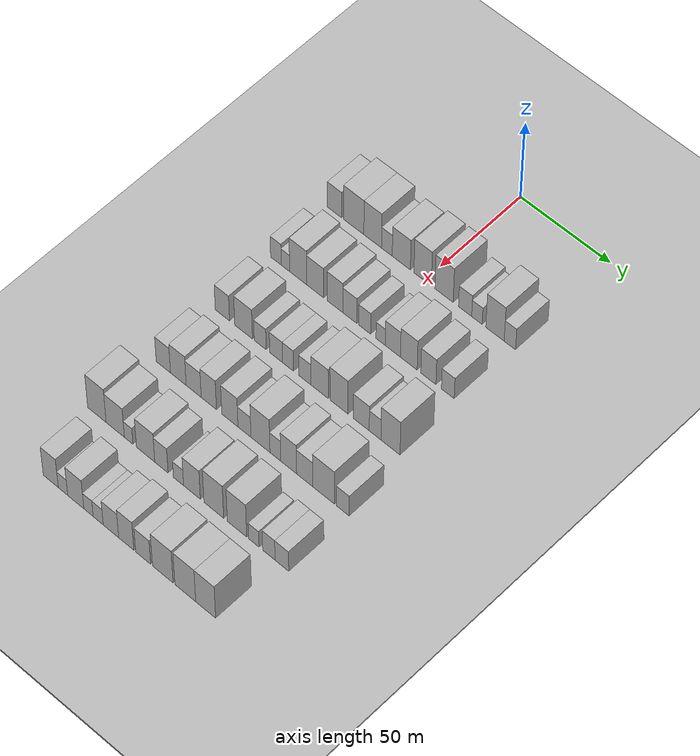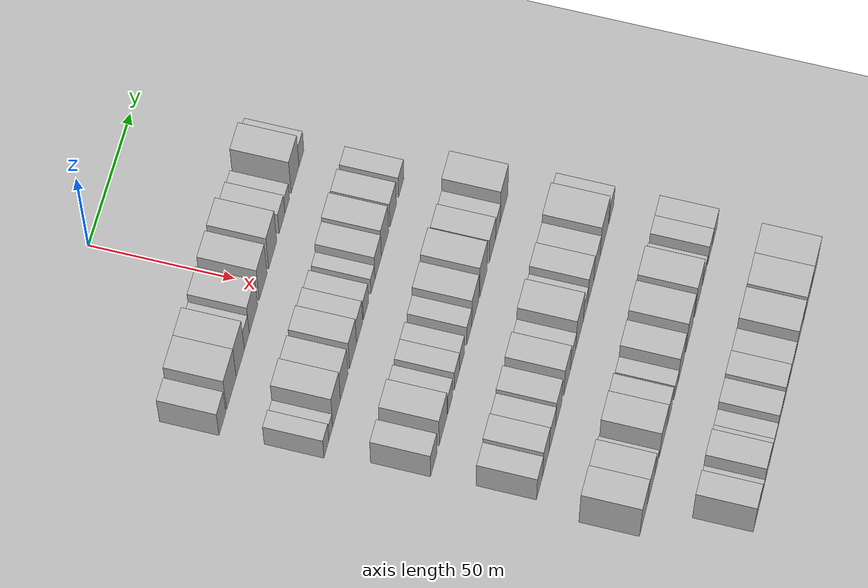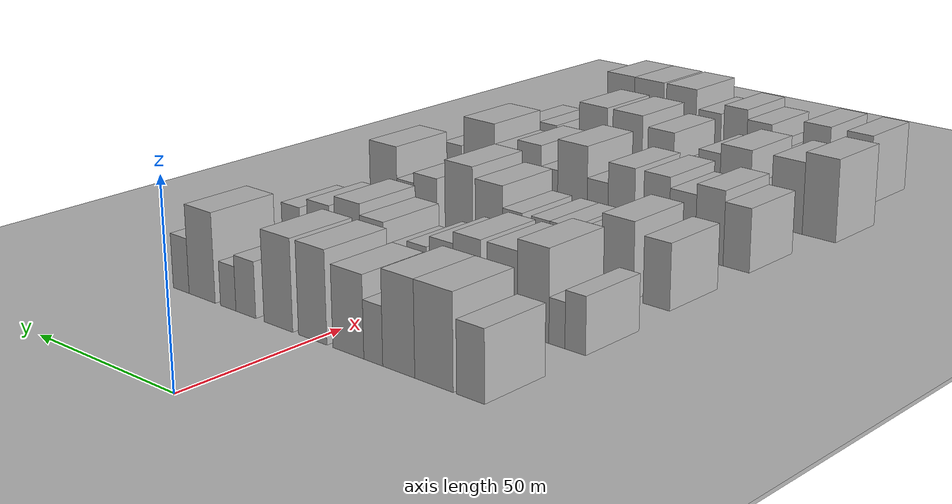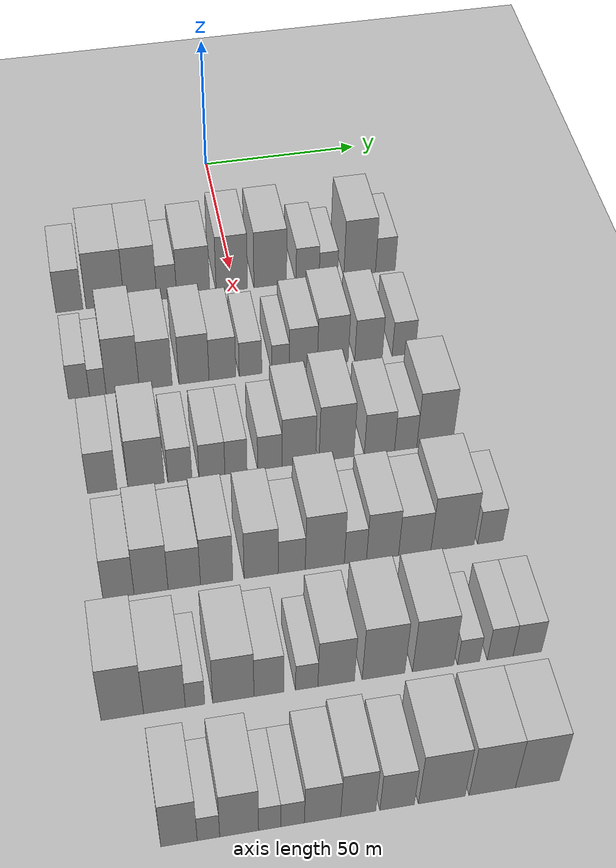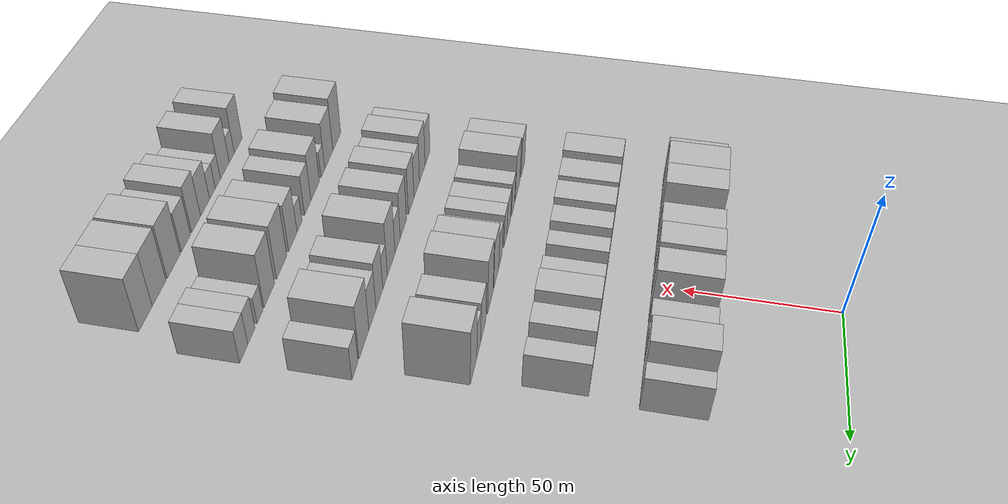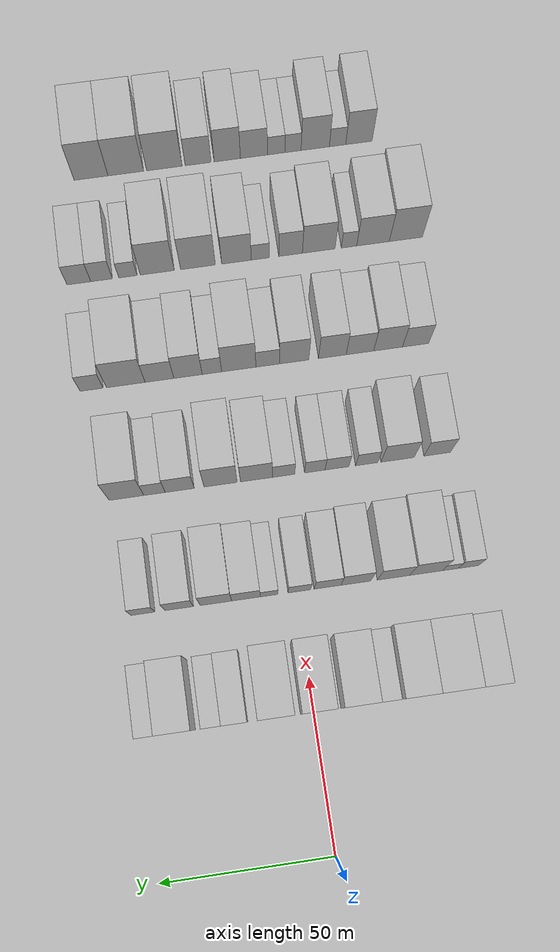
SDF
<sdf version="1.6">
 <world name="default">
  <include><name>ground_plane_1</name><uri>model://HANNAS_ground_plane</uri></include>
  <include>
   <name>ground_plane_2</name>
   <uri>model://HANNAS_ground_plane</uri>
   <pose>100 0 0  0 0 0</pose>
  </include>
  <model name="building_55">
   <static>1</static>
   <pose>50.0000 -51.0369 0 0.000000 0.000000 0.000000</pose>
   <link name="link">
    <pose>0 0 9.00 0 0 0</pose>
    <collision name="collision"><geometry><box><size>20.0000 8.2338 18.0000</size></box></geometry></collision>
    <visual name="visual">
     <cast_shadows>0</cast_shadows>
     <geometry><box><size>20.0000 8.2338 18.0000</size></box></geometry>
     <material>
      <script>
       <uri>model://HANNAS_wall/materials/scripts</uri>
       <uri>model://HANNAS_wall/materials/textures</uri>
       <name>vrc/HANNAS_wall</name>
      </script>
     </material>
    </visual>
   </link>
  </model>
  <model name="building_56">
   <static>1</static>
   <pose>50.0000 -40.0730 0 0.000000 0.000000 0.000000</pose>
   <link name="link">
    <pose>0 0 12.00 0 0 0</pose>
    <collision name="collision"><geometry><box><size>20.0000 11.6939 24.0000</size></box></geometry></collision>
    <visual name="visual">
     <cast_shadows>0</cast_shadows>
     <geometry><box><size>20.0000 11.6939 24.0000</size></box></geometry>
     <material>
      <script>
       <uri>model://HANNAS_wall/materials/scripts</uri>
       <uri>model://HANNAS_wall/materials/textures</uri>
       <name>vrc/HANNAS_wall</name>
      </script>
     </material>
    </visual>
   </link>
  </model>
  <model name="building_57">
   <static>1</static>
   <pose>50.0000 -29.1787 0 0.000000 0.000000 0.000000</pose>
   <link name="link">
    <pose>0 0 12.00 0 0 0</pose>
    <collision name="collision"><geometry><box><size>20.0000 10.0948 24.0000</size></box></geometry></collision>
    <visual name="visual">
     <cast_shadows>0</cast_shadows>
     <geometry><box><size>20.0000 10.0948 24.0000</size></box></geometry>
     <material>
      <script>
       <uri>model://HANNAS_wall/materials/scripts</uri>
       <uri>model://HANNAS_wall/materials/textures</uri>
       <name>vrc/HANNAS_wall</name>
      </script>
     </material>
    </visual>
   </link>
  </model>
  <model name="building_58">
   <static>1</static>
   <pose>50.0000 -21.0761 0 0.000000 0.000000 0.000000</pose>
   <link name="link">
    <pose>0 0 7.50 0 0 0</pose>
    <collision name="collision"><geometry><box><size>20.0000 6.1104 15.0000</size></box></geometry></collision>
    <visual name="visual">
     <cast_shadows>0</cast_shadows>
     <geometry><box><size>20.0000 6.1104 15.0000</size></box></geometry>
     <material>
      <script>
       <uri>model://HANNAS_wall/materials/scripts</uri>
       <uri>model://HANNAS_wall/materials/textures</uri>
       <name>vrc/HANNAS_wall</name>
      </script>
     </material>
    </visual>
   </link>
  </model>
  <model name="building_59">
   <static>1</static>
   <pose>50.0000 -12.8789 0 0.000000 0.000000 0.000000</pose>
   <link name="link">
    <pose>0 0 10.50 0 0 0</pose>
    <collision name="collision"><geometry><box><size>20.0000 10.2841 21.0000</size></box></geometry></collision>
    <visual name="visual">
     <cast_shadows>0</cast_shadows>
     <geometry><box><size>20.0000 10.2841 21.0000</size></box></geometry>
     <material>
      <script>
       <uri>model://HANNAS_wall/materials/scripts</uri>
       <uri>model://HANNAS_wall/materials/textures</uri>
       <name>vrc/HANNAS_wall</name>
      </script>
     </material>
    </visual>
   </link>
  </model>
  <model name="building_60">
   <static>1</static>
   <pose>50.0000 -0.8446 0 0.000000 0.000000 0.000000</pose>
   <link name="link">
    <pose>0 0 12.00 0 0 0</pose>
    <collision name="collision"><geometry><box><size>20.0000 9.7845 24.0000</size></box></geometry></collision>
    <visual name="visual">
     <cast_shadows>0</cast_shadows>
     <geometry><box><size>20.0000 9.7845 24.0000</size></box></geometry>
     <material>
      <script>
       <uri>model://HANNAS_wall/materials/scripts</uri>
       <uri>model://HANNAS_wall/materials/textures</uri>
       <name>vrc/HANNAS_wall</name>
      </script>
     </material>
    </visual>
   </link>
  </model>
  <model name="building_61">
   <static>1</static>
   <pose>50.0000 11.1648 0 0.000000 0.000000 0.000000</pose>
   <link name="link">
    <pose>0 0 12.00 0 0 0</pose>
    <collision name="collision"><geometry><box><size>20.0000 10.2342 24.0000</size></box></geometry></collision>
    <visual name="visual">
     <cast_shadows>0</cast_shadows>
     <geometry><box><size>20.0000 10.2342 24.0000</size></box></geometry>
     <material>
      <script>
       <uri>model://HANNAS_wall/materials/scripts</uri>
       <uri>model://HANNAS_wall/materials/textures</uri>
       <name>vrc/HANNAS_wall</name>
      </script>
     </material>
    </visual>
   </link>
  </model>
  <model name="building_62">
   <static>1</static>
   <pose>50.0000 22.9449 0 0.000000 0.000000 0.000000</pose>
   <link name="link">
    <pose>0 0 7.50 0 0 0</pose>
    <collision name="collision"><geometry><box><size>20.0000 7.3262 15.0000</size></box></geometry></collision>
    <visual name="visual">
     <cast_shadows>0</cast_shadows>
     <geometry><box><size>20.0000 7.3262 15.0000</size></box></geometry>
     <material>
      <script>
       <uri>model://HANNAS_wall/materials/scripts</uri>
       <uri>model://HANNAS_wall/materials/textures</uri>
       <name>vrc/HANNAS_wall</name>
      </script>
     </material>
    </visual>
   </link>
  </model>
  <model name="building_63">
   <static>1</static>
   <pose>50.0000 29.5186 0 0.000000 0.000000 0.000000</pose>
   <link name="link">
    <pose>0 0 6.00 0 0 0</pose>
    <collision name="collision"><geometry><box><size>20.0000 5.8213 12.0000</size></box></geometry></collision>
    <visual name="visual">
     <cast_shadows>0</cast_shadows>
     <geometry><box><size>20.0000 5.8213 12.0000</size></box></geometry>
     <material>
      <script>
       <uri>model://HANNAS_wall/materials/scripts</uri>
       <uri>model://HANNAS_wall/materials/textures</uri>
       <name>vrc/HANNAS_wall</name>
      </script>
     </material>
    </visual>
   </link>
  </model>
  <model name="building_64">
   <static>1</static>
   <pose>50.0000 39.4826 0 0.000000 0.000000 0.000000</pose>
   <link name="link">
    <pose>0 0 12.00 0 0 0</pose>
    <collision name="collision"><geometry><box><size>20.0000 10.1067 24.0000</size></box></geometry></collision>
    <visual name="visual">
     <cast_shadows>0</cast_shadows>
     <geometry><box><size>20.0000 10.1067 24.0000</size></box></geometry>
     <material>
      <script>
       <uri>model://HANNAS_wall/materials/scripts</uri>
       <uri>model://HANNAS_wall/materials/textures</uri>
       <name>vrc/HANNAS_wall</name>
      </script>
     </material>
    </visual>
   </link>
  </model>
  <model name="building_65">
   <static>1</static>
   <pose>50.0000 47.6715 0 0.000000 0.000000 0.000000</pose>
   <link name="link">
    <pose>0 0 7.50 0 0 0</pose>
    <collision name="collision"><geometry><box><size>20.0000 6.2711 15.0000</size></box></geometry></collision>
    <visual name="visual">
     <cast_shadows>0</cast_shadows>
     <geometry><box><size>20.0000 6.2711 15.0000</size></box></geometry>
     <material>
      <script>
       <uri>model://HANNAS_wall/materials/scripts</uri>
       <uri>model://HANNAS_wall/materials/textures</uri>
       <name>vrc/HANNAS_wall</name>
      </script>
     </material>
    </visual>
   </link>
  </model>
  <model name="building_180">
   <static>1</static>
   <pose>85.0000 -51.4143 0 0.000000 0.000000 0.000000</pose>
   <link name="link">
    <pose>0 0 7.50 0 0 0</pose>
    <collision name="collision"><geometry><box><size>20.0000 6.1304 15.0000</size></box></geometry></collision>
    <visual name="visual">
     <cast_shadows>0</cast_shadows>
     <geometry><box><size>20.0000 6.1304 15.0000</size></box></geometry>
     <material>
      <script>
       <uri>model://HANNAS_wall/materials/scripts</uri>
       <uri>model://HANNAS_wall/materials/textures</uri>
       <name>vrc/HANNAS_wall</name>
      </script>
     </material>
    </visual>
   </link>
  </model>
  <model name="building_181">
   <static>1</static>
   <pose>85.0000 -45.9198 0 0.000000 0.000000 0.000000</pose>
   <link name="link">
    <pose>0 0 6.00 0 0 0</pose>
    <collision name="collision"><geometry><box><size>20.0000 4.8586 12.0000</size></box></geometry></collision>
    <visual name="visual">
     <cast_shadows>0</cast_shadows>
     <geometry><box><size>20.0000 4.8586 12.0000</size></box></geometry>
     <material>
      <script>
       <uri>model://HANNAS_wall/materials/scripts</uri>
       <uri>model://HANNAS_wall/materials/textures</uri>
       <name>vrc/HANNAS_wall</name>
      </script>
     </material>
    </visual>
   </link>
  </model>
  <model name="building_182">
   <static>1</static>
   <pose>85.0000 -38.6034 0 0.000000 0.000000 0.000000</pose>
   <link name="link">
    <pose>0 0 12.00 0 0 0</pose>
    <collision name="collision"><geometry><box><size>20.0000 9.7742 24.0000</size></box></geometry></collision>
    <visual name="visual">
     <cast_shadows>0</cast_shadows>
     <geometry><box><size>20.0000 9.7742 24.0000</size></box></geometry>
     <material>
      <script>
       <uri>model://HANNAS_wall/materials/scripts</uri>
       <uri>model://HANNAS_wall/materials/textures</uri>
       <name>vrc/HANNAS_wall</name>
      </script>
     </material>
    </visual>
   </link>
  </model>
  <model name="building_183">
   <static>1</static>
   <pose>85.0000 -28.9002 0 0.000000 0.000000 0.000000</pose>
   <link name="link">
    <pose>0 0 10.50 0 0 0</pose>
    <collision name="collision"><geometry><box><size>20.0000 9.6323 21.0000</size></box></geometry></collision>
    <visual name="visual">
     <cast_shadows>0</cast_shadows>
     <geometry><box><size>20.0000 9.6323 21.0000</size></box></geometry>
     <material>
      <script>
       <uri>model://HANNAS_wall/materials/scripts</uri>
       <uri>model://HANNAS_wall/materials/textures</uri>
       <name>vrc/HANNAS_wall</name>
      </script>
     </material>
    </visual>
   </link>
  </model>
  <model name="building_184">
   <static>1</static>
   <pose>85.0000 -17.6263 0 0.000000 0.000000 0.000000</pose>
   <link name="link">
    <pose>0 0 10.50 0 0 0</pose>
    <collision name="collision"><geometry><box><size>20.0000 8.9155 21.0000</size></box></geometry></collision>
    <visual name="visual">
     <cast_shadows>0</cast_shadows>
     <geometry><box><size>20.0000 8.9155 21.0000</size></box></geometry>
     <material>
      <script>
       <uri>model://HANNAS_wall/materials/scripts</uri>
       <uri>model://HANNAS_wall/materials/textures</uri>
       <name>vrc/HANNAS_wall</name>
      </script>
     </material>
    </visual>
   </link>
  </model>
  <model name="building_185">
   <static>1</static>
   <pose>85.0000 -9.1931 0 0.000000 0.000000 0.000000</pose>
   <link name="link">
    <pose>0 0 9.00 0 0 0</pose>
    <collision name="collision"><geometry><box><size>20.0000 7.9510 18.0000</size></box></geometry></collision>
    <visual name="visual">
     <cast_shadows>0</cast_shadows>
     <geometry><box><size>20.0000 7.9510 18.0000</size></box></geometry>
     <material>
      <script>
       <uri>model://HANNAS_wall/materials/scripts</uri>
       <uri>model://HANNAS_wall/materials/textures</uri>
       <name>vrc/HANNAS_wall</name>
      </script>
     </material>
    </visual>
   </link>
  </model>
  <model name="building_186">
   <static>1</static>
   <pose>85.0000 -0.8557 0 0.000000 0.000000 0.000000</pose>
   <link name="link">
    <pose>0 0 7.50 0 0 0</pose>
    <collision name="collision"><geometry><box><size>20.0000 6.7236 15.0000</size></box></geometry></collision>
    <visual name="visual">
     <cast_shadows>0</cast_shadows>
     <geometry><box><size>20.0000 6.7236 15.0000</size></box></geometry>
     <material>
      <script>
       <uri>model://HANNAS_wall/materials/scripts</uri>
       <uri>model://HANNAS_wall/materials/textures</uri>
       <name>vrc/HANNAS_wall</name>
      </script>
     </material>
    </visual>
   </link>
  </model>
  <model name="building_187">
   <static>1</static>
   <pose>85.0000 8.1166 0 0.000000 0.000000 0.000000</pose>
   <link name="link">
    <pose>0 0 6.00 0 0 0</pose>
    <collision name="collision"><geometry><box><size>20.0000 5.2212 12.0000</size></box></geometry></collision>
    <visual name="visual">
     <cast_shadows>0</cast_shadows>
     <geometry><box><size>20.0000 5.2212 12.0000</size></box></geometry>
     <material>
      <script>
       <uri>model://HANNAS_wall/materials/scripts</uri>
       <uri>model://HANNAS_wall/materials/textures</uri>
       <name>vrc/HANNAS_wall</name>
      </script>
     </material>
    </visual>
   </link>
  </model>
  <model name="building_188">
   <static>1</static>
   <pose>85.0000 14.9521 0 0.000000 0.000000 0.000000</pose>
   <link name="link">
    <pose>0 0 9.00 0 0 0</pose>
    <collision name="collision"><geometry><box><size>20.0000 8.4498 18.0000</size></box></geometry></collision>
    <visual name="visual">
     <cast_shadows>0</cast_shadows>
     <geometry><box><size>20.0000 8.4498 18.0000</size></box></geometry>
     <material>
      <script>
       <uri>model://HANNAS_wall/materials/scripts</uri>
       <uri>model://HANNAS_wall/materials/textures</uri>
       <name>vrc/HANNAS_wall</name>
      </script>
     </material>
    </visual>
   </link>
  </model>
  <model name="building_189">
   <static>1</static>
   <pose>85.0000 23.8384 0 0.000000 0.000000 0.000000</pose>
   <link name="link">
    <pose>0 0 10.50 0 0 0</pose>
    <collision name="collision"><geometry><box><size>20.0000 9.3228 21.0000</size></box></geometry></collision>
    <visual name="visual">
     <cast_shadows>0</cast_shadows>
     <geometry><box><size>20.0000 9.3228 21.0000</size></box></geometry>
     <material>
      <script>
       <uri>model://HANNAS_wall/materials/scripts</uri>
       <uri>model://HANNAS_wall/materials/textures</uri>
       <name>vrc/HANNAS_wall</name>
      </script>
     </material>
    </visual>
   </link>
  </model>
  <model name="building_190">
   <static>1</static>
   <pose>85.0000 34.6879 0 0.000000 0.000000 0.000000</pose>
   <link name="link">
    <pose>0 0 9.00 0 0 0</pose>
    <collision name="collision"><geometry><box><size>20.0000 8.3762 18.0000</size></box></geometry></collision>
    <visual name="visual">
     <cast_shadows>0</cast_shadows>
     <geometry><box><size>20.0000 8.3762 18.0000</size></box></geometry>
     <material>
      <script>
       <uri>model://HANNAS_wall/materials/scripts</uri>
       <uri>model://HANNAS_wall/materials/textures</uri>
       <name>vrc/HANNAS_wall</name>
      </script>
     </material>
    </visual>
   </link>
  </model>
  <model name="building_191">
   <static>1</static>
   <pose>85.0000 45.3906 0 0.000000 0.000000 0.000000</pose>
   <link name="link">
    <pose>0 0 7.50 0 0 0</pose>
    <collision name="collision"><geometry><box><size>20.0000 7.0293 15.0000</size></box></geometry></collision>
    <visual name="visual">
     <cast_shadows>0</cast_shadows>
     <geometry><box><size>20.0000 7.0293 15.0000</size></box></geometry>
     <material>
      <script>
       <uri>model://HANNAS_wall/materials/scripts</uri>
       <uri>model://HANNAS_wall/materials/textures</uri>
       <name>vrc/HANNAS_wall</name>
      </script>
     </material>
    </visual>
   </link>
  </model>
  <model name="building_314">
   <static>1</static>
   <pose>120.0000 -48.2060 0 0.000000 0.000000 0.000000</pose>
   <link name="link">
    <pose>0 0 9.00 0 0 0</pose>
    <collision name="collision"><geometry><box><size>20.0000 8.1753 18.0000</size></box></geometry></collision>
    <visual name="visual">
     <cast_shadows>0</cast_shadows>
     <geometry><box><size>20.0000 8.1753 18.0000</size></box></geometry>
     <material>
      <script>
       <uri>model://HANNAS_wall/materials/scripts</uri>
       <uri>model://HANNAS_wall/materials/textures</uri>
       <name>vrc/HANNAS_wall</name>
      </script>
     </material>
    </visual>
   </link>
  </model>
  <model name="building_315">
   <static>1</static>
   <pose>120.0000 -36.0359 0 0.000000 0.000000 0.000000</pose>
   <link name="link">
    <pose>0 0 10.50 0 0 0</pose>
    <collision name="collision"><geometry><box><size>20.0000 10.1650 21.0000</size></box></geometry></collision>
    <visual name="visual">
     <cast_shadows>0</cast_shadows>
     <geometry><box><size>20.0000 10.1650 21.0000</size></box></geometry>
     <material>
      <script>
       <uri>model://HANNAS_wall/materials/scripts</uri>
       <uri>model://HANNAS_wall/materials/textures</uri>
       <name>vrc/HANNAS_wall</name>
      </script>
     </material>
    </visual>
   </link>
  </model>
  <model name="building_316">
   <static>1</static>
   <pose>120.0000 -26.5698 0 0.000000 0.000000 0.000000</pose>
   <link name="link">
    <pose>0 0 7.50 0 0 0</pose>
    <collision name="collision"><geometry><box><size>20.0000 6.7672 15.0000</size></box></geometry></collision>
    <visual name="visual">
     <cast_shadows>0</cast_shadows>
     <geometry><box><size>20.0000 6.7672 15.0000</size></box></geometry>
     <material>
      <script>
       <uri>model://HANNAS_wall/materials/scripts</uri>
       <uri>model://HANNAS_wall/materials/textures</uri>
       <name>vrc/HANNAS_wall</name>
      </script>
     </material>
    </visual>
   </link>
  </model>
  <model name="building_317">
   <static>1</static>
   <pose>120.0000 -17.5385 0 0.000000 0.000000 0.000000</pose>
   <link name="link">
    <pose>0 0 7.50 0 0 0</pose>
    <collision name="collision"><geometry><box><size>20.0000 7.2954 15.0000</size></box></geometry></collision>
    <visual name="visual">
     <cast_shadows>0</cast_shadows>
     <geometry><box><size>20.0000 7.2954 15.0000</size></box></geometry>
     <material>
      <script>
       <uri>model://HANNAS_wall/materials/scripts</uri>
       <uri>model://HANNAS_wall/materials/textures</uri>
       <name>vrc/HANNAS_wall</name>
      </script>
     </material>
    </visual>
   </link>
  </model>
  <model name="building_318">
   <static>1</static>
   <pose>120.0000 -10.7752 0 0.000000 0.000000 0.000000</pose>
   <link name="link">
    <pose>0 0 7.50 0 0 0</pose>
    <collision name="collision"><geometry><box><size>20.0000 6.2312 15.0000</size></box></geometry></collision>
    <visual name="visual">
     <cast_shadows>0</cast_shadows>
     <geometry><box><size>20.0000 6.2312 15.0000</size></box></geometry>
     <material>
      <script>
       <uri>model://HANNAS_wall/materials/scripts</uri>
       <uri>model://HANNAS_wall/materials/textures</uri>
       <name>vrc/HANNAS_wall</name>
      </script>
     </material>
    </visual>
   </link>
  </model>
  <model name="building_319">
   <static>1</static>
   <pose>120.0000 -1.2238 0 0.000000 0.000000 0.000000</pose>
   <link name="link">
    <pose>0 0 7.50 0 0 0</pose>
    <collision name="collision"><geometry><box><size>20.0000 6.8716 15.0000</size></box></geometry></collision>
    <visual name="visual">
     <cast_shadows>0</cast_shadows>
     <geometry><box><size>20.0000 6.8716 15.0000</size></box></geometry>
     <material>
      <script>
       <uri>model://HANNAS_wall/materials/scripts</uri>
       <uri>model://HANNAS_wall/materials/textures</uri>
       <name>vrc/HANNAS_wall</name>
      </script>
     </material>
    </visual>
   </link>
  </model>
  <model name="building_320">
   <static>1</static>
   <pose>120.0000 7.0176 0 0.000000 0.000000 0.000000</pose>
   <link name="link">
    <pose>0 0 10.50 0 0 0</pose>
    <collision name="collision"><geometry><box><size>20.0000 9.6111 21.0000</size></box></geometry></collision>
    <visual name="visual">
     <cast_shadows>0</cast_shadows>
     <geometry><box><size>20.0000 9.6111 21.0000</size></box></geometry>
     <material>
      <script>
       <uri>model://HANNAS_wall/materials/scripts</uri>
       <uri>model://HANNAS_wall/materials/textures</uri>
       <name>vrc/HANNAS_wall</name>
      </script>
     </material>
    </visual>
   </link>
  </model>
  <model name="building_321">
   <static>1</static>
   <pose>120.0000 17.8323 0 0.000000 0.000000 0.000000</pose>
   <link name="link">
    <pose>0 0 12.00 0 0 0</pose>
    <collision name="collision"><geometry><box><size>20.0000 10.0183 24.0000</size></box></geometry></collision>
    <visual name="visual">
     <cast_shadows>0</cast_shadows>
     <geometry><box><size>20.0000 10.0183 24.0000</size></box></geometry>
     <material>
      <script>
       <uri>model://HANNAS_wall/materials/scripts</uri>
       <uri>model://HANNAS_wall/materials/textures</uri>
       <name>vrc/HANNAS_wall</name>
      </script>
     </material>
    </visual>
   </link>
  </model>
  <model name="building_322">
   <static>1</static>
   <pose>120.0000 30.2092 0 0.000000 0.000000 0.000000</pose>
   <link name="link">
    <pose>0 0 9.00 0 0 0</pose>
    <collision name="collision"><geometry><box><size>20.0000 8.7357 18.0000</size></box></geometry></collision>
    <visual name="visual">
     <cast_shadows>0</cast_shadows>
     <geometry><box><size>20.0000 8.7357 18.0000</size></box></geometry>
     <material>
      <script>
       <uri>model://HANNAS_wall/materials/scripts</uri>
       <uri>model://HANNAS_wall/materials/textures</uri>
       <name>vrc/HANNAS_wall</name>
      </script>
     </material>
    </visual>
   </link>
  </model>
  <model name="building_323">
   <static>1</static>
   <pose>120.0000 37.8010 0 0.000000 0.000000 0.000000</pose>
   <link name="link">
    <pose>0 0 7.50 0 0 0</pose>
    <collision name="collision"><geometry><box><size>20.0000 6.4478 15.0000</size></box></geometry></collision>
    <visual name="visual">
     <cast_shadows>0</cast_shadows>
     <geometry><box><size>20.0000 6.4478 15.0000</size></box></geometry>
     <material>
      <script>
       <uri>model://HANNAS_wall/materials/scripts</uri>
       <uri>model://HANNAS_wall/materials/textures</uri>
       <name>vrc/HANNAS_wall</name>
      </script>
     </material>
    </visual>
   </link>
  </model>
  <model name="building_324">
   <static>1</static>
   <pose>120.0000 46.2724 0 0.000000 0.000000 0.000000</pose>
   <link name="link">
    <pose>0 0 12.00 0 0 0</pose>
    <collision name="collision"><geometry><box><size>20.0000 10.4950 24.0000</size></box></geometry></collision>
    <visual name="visual">
     <cast_shadows>0</cast_shadows>
     <geometry><box><size>20.0000 10.4950 24.0000</size></box></geometry>
     <material>
      <script>
       <uri>model://HANNAS_wall/materials/scripts</uri>
       <uri>model://HANNAS_wall/materials/textures</uri>
       <name>vrc/HANNAS_wall</name>
      </script>
     </material>
    </visual>
   </link>
  </model>
  <model name="building_444">
   <static>1</static>
   <pose>155.0000 -47.5724 0 0.000000 0.000000 0.000000</pose>
   <link name="link">
    <pose>0 0 9.00 0 0 0</pose>
    <collision name="collision"><geometry><box><size>20.0000 8.2114 18.0000</size></box></geometry></collision>
    <visual name="visual">
     <cast_shadows>0</cast_shadows>
     <geometry><box><size>20.0000 8.2114 18.0000</size></box></geometry>
     <material>
      <script>
       <uri>model://HANNAS_wall/materials/scripts</uri>
       <uri>model://HANNAS_wall/materials/textures</uri>
       <name>vrc/HANNAS_wall</name>
      </script>
     </material>
    </visual>
   </link>
  </model>
  <model name="building_445">
   <static>1</static>
   <pose>155.0000 -38.9659 0 0.000000 0.000000 0.000000</pose>
   <link name="link">
    <pose>0 0 10.50 0 0 0</pose>
    <collision name="collision"><geometry><box><size>20.0000 9.0017 21.0000</size></box></geometry></collision>
    <visual name="visual">
     <cast_shadows>0</cast_shadows>
     <geometry><box><size>20.0000 9.0017 21.0000</size></box></geometry>
     <material>
      <script>
       <uri>model://HANNAS_wall/materials/scripts</uri>
       <uri>model://HANNAS_wall/materials/textures</uri>
       <name>vrc/HANNAS_wall</name>
      </script>
     </material>
    </visual>
   </link>
  </model>
  <model name="building_446">
   <static>1</static>
   <pose>155.0000 -30.1668 0 0.000000 0.000000 0.000000</pose>
   <link name="link">
    <pose>0 0 9.00 0 0 0</pose>
    <collision name="collision"><geometry><box><size>20.0000 8.5966 18.0000</size></box></geometry></collision>
    <visual name="visual">
     <cast_shadows>0</cast_shadows>
     <geometry><box><size>20.0000 8.5966 18.0000</size></box></geometry>
     <material>
      <script>
       <uri>model://HANNAS_wall/materials/scripts</uri>
       <uri>model://HANNAS_wall/materials/textures</uri>
       <name>vrc/HANNAS_wall</name>
      </script>
     </material>
    </visual>
   </link>
  </model>
  <model name="building_447">
   <static>1</static>
   <pose>155.0000 -21.5479 0 0.000000 0.000000 0.000000</pose>
   <link name="link">
    <pose>0 0 10.50 0 0 0</pose>
    <collision name="collision"><geometry><box><size>20.0000 8.6412 21.0000</size></box></geometry></collision>
    <visual name="visual">
     <cast_shadows>0</cast_shadows>
     <geometry><box><size>20.0000 8.6412 21.0000</size></box></geometry>
     <material>
      <script>
       <uri>model://HANNAS_wall/materials/scripts</uri>
       <uri>model://HANNAS_wall/materials/textures</uri>
       <name>vrc/HANNAS_wall</name>
      </script>
     </material>
    </visual>
   </link>
  </model>
  <model name="building_448">
   <static>1</static>
   <pose>155.0000 -9.6588 0 0.000000 0.000000 0.000000</pose>
   <link name="link">
    <pose>0 0 10.50 0 0 0</pose>
    <collision name="collision"><geometry><box><size>20.0000 9.1368 21.0000</size></box></geometry></collision>
    <visual name="visual">
     <cast_shadows>0</cast_shadows>
     <geometry><box><size>20.0000 9.1368 21.0000</size></box></geometry>
     <material>
      <script>
       <uri>model://HANNAS_wall/materials/scripts</uri>
       <uri>model://HANNAS_wall/materials/textures</uri>
       <name>vrc/HANNAS_wall</name>
      </script>
     </material>
    </visual>
   </link>
  </model>
  <model name="building_449">
   <static>1</static>
   <pose>155.0000 -1.4371 0 0.000000 0.000000 0.000000</pose>
   <link name="link">
    <pose>0 0 7.50 0 0 0</pose>
    <collision name="collision"><geometry><box><size>20.0000 7.3067 15.0000</size></box></geometry></collision>
    <visual name="visual">
     <cast_shadows>0</cast_shadows>
     <geometry><box><size>20.0000 7.3067 15.0000</size></box></geometry>
     <material>
      <script>
       <uri>model://HANNAS_wall/materials/scripts</uri>
       <uri>model://HANNAS_wall/materials/textures</uri>
       <name>vrc/HANNAS_wall</name>
      </script>
     </material>
    </visual>
   </link>
  </model>
  <model name="building_450">
   <static>1</static>
   <pose>155.0000 7.5286 0 0.000000 0.000000 0.000000</pose>
   <link name="link">
    <pose>0 0 12.00 0 0 0</pose>
    <collision name="collision"><geometry><box><size>20.0000 10.6248 24.0000</size></box></geometry></collision>
    <visual name="visual">
     <cast_shadows>0</cast_shadows>
     <geometry><box><size>20.0000 10.6248 24.0000</size></box></geometry>
     <material>
      <script>
       <uri>model://HANNAS_wall/materials/scripts</uri>
       <uri>model://HANNAS_wall/materials/textures</uri>
       <name>vrc/HANNAS_wall</name>
      </script>
     </material>
    </visual>
   </link>
  </model>
  <model name="building_451">
   <static>1</static>
   <pose>155.0000 15.8532 0 0.000000 0.000000 0.000000</pose>
   <link name="link">
    <pose>0 0 7.50 0 0 0</pose>
    <collision name="collision"><geometry><box><size>20.0000 6.0244 15.0000</size></box></geometry></collision>
    <visual name="visual">
     <cast_shadows>0</cast_shadows>
     <geometry><box><size>20.0000 6.0244 15.0000</size></box></geometry>
     <material>
      <script>
       <uri>model://HANNAS_wall/materials/scripts</uri>
       <uri>model://HANNAS_wall/materials/textures</uri>
       <name>vrc/HANNAS_wall</name>
      </script>
     </material>
    </visual>
   </link>
  </model>
  <model name="building_452">
   <static>1</static>
   <pose>155.0000 23.2506 0 0.000000 0.000000 0.000000</pose>
   <link name="link">
    <pose>0 0 10.50 0 0 0</pose>
    <collision name="collision"><geometry><box><size>20.0000 8.7705 21.0000</size></box></geometry></collision>
    <visual name="visual">
     <cast_shadows>0</cast_shadows>
     <geometry><box><size>20.0000 8.7705 21.0000</size></box></geometry>
     <material>
      <script>
       <uri>model://HANNAS_wall/materials/scripts</uri>
       <uri>model://HANNAS_wall/materials/textures</uri>
       <name>vrc/HANNAS_wall</name>
      </script>
     </material>
    </visual>
   </link>
  </model>
  <model name="building_453">
   <static>1</static>
   <pose>155.0000 32.0824 0 0.000000 0.000000 0.000000</pose>
   <link name="link">
    <pose>0 0 9.00 0 0 0</pose>
    <collision name="collision"><geometry><box><size>20.0000 8.8931 18.0000</size></box></geometry></collision>
    <visual name="visual">
     <cast_shadows>0</cast_shadows>
     <geometry><box><size>20.0000 8.8931 18.0000</size></box></geometry>
     <material>
      <script>
       <uri>model://HANNAS_wall/materials/scripts</uri>
       <uri>model://HANNAS_wall/materials/textures</uri>
       <name>vrc/HANNAS_wall</name>
      </script>
     </material>
    </visual>
   </link>
  </model>
  <model name="building_454">
   <static>1</static>
   <pose>155.0000 42.4954 0 0.000000 0.000000 0.000000</pose>
   <link name="link">
    <pose>0 0 12.00 0 0 0</pose>
    <collision name="collision"><geometry><box><size>20.0000 11.9328 24.0000</size></box></geometry></collision>
    <visual name="visual">
     <cast_shadows>0</cast_shadows>
     <geometry><box><size>20.0000 11.9328 24.0000</size></box></geometry>
     <material>
      <script>
       <uri>model://HANNAS_wall/materials/scripts</uri>
       <uri>model://HANNAS_wall/materials/textures</uri>
       <name>vrc/HANNAS_wall</name>
      </script>
     </material>
    </visual>
   </link>
  </model>
  <model name="building_455">
   <static>1</static>
   <pose>155.0000 53.0091 0 0.000000 0.000000 0.000000</pose>
   <link name="link">
    <pose>0 0 7.50 0 0 0</pose>
    <collision name="collision"><geometry><box><size>20.0000 7.0947 15.0000</size></box></geometry></collision>
    <visual name="visual">
     <cast_shadows>0</cast_shadows>
     <geometry><box><size>20.0000 7.0947 15.0000</size></box></geometry>
     <material>
      <script>
       <uri>model://HANNAS_wall/materials/scripts</uri>
       <uri>model://HANNAS_wall/materials/textures</uri>
       <name>vrc/HANNAS_wall</name>
      </script>
     </material>
    </visual>
   </link>
  </model>
  <model name="building_569">
   <static>1</static>
   <pose>190.0000 -50.4875 0 0.000000 0.000000 0.000000</pose>
   <link name="link">
    <pose>0 0 12.00 0 0 0</pose>
    <collision name="collision"><geometry><box><size>20.0000 10.6059 24.0000</size></box></geometry></collision>
    <visual name="visual">
     <cast_shadows>0</cast_shadows>
     <geometry><box><size>20.0000 10.6059 24.0000</size></box></geometry>
     <material>
      <script>
       <uri>model://HANNAS_wall/materials/scripts</uri>
       <uri>model://HANNAS_wall/materials/textures</uri>
       <name>vrc/HANNAS_wall</name>
      </script>
     </material>
    </visual>
   </link>
  </model>
  <model name="building_570">
   <static>1</static>
   <pose>190.0000 -39.9735 0 0.000000 0.000000 0.000000</pose>
   <link name="link">
    <pose>0 0 10.50 0 0 0</pose>
    <collision name="collision"><geometry><box><size>20.0000 10.4219 21.0000</size></box></geometry></collision>
    <visual name="visual">
     <cast_shadows>0</cast_shadows>
     <geometry><box><size>20.0000 10.4219 21.0000</size></box></geometry>
     <material>
      <script>
       <uri>model://HANNAS_wall/materials/scripts</uri>
       <uri>model://HANNAS_wall/materials/textures</uri>
       <name>vrc/HANNAS_wall</name>
      </script>
     </material>
    </visual>
   </link>
  </model>
  <model name="building_571">
   <static>1</static>
   <pose>190.0000 -32.3102 0 0.000000 0.000000 0.000000</pose>
   <link name="link">
    <pose>0 0 6.00 0 0 0</pose>
    <collision name="collision"><geometry><box><size>20.0000 4.9047 12.0000</size></box></geometry></collision>
    <visual name="visual">
     <cast_shadows>0</cast_shadows>
     <geometry><box><size>20.0000 4.9047 12.0000</size></box></geometry>
     <material>
      <script>
       <uri>model://HANNAS_wall/materials/scripts</uri>
       <uri>model://HANNAS_wall/materials/textures</uri>
       <name>vrc/HANNAS_wall</name>
      </script>
     </material>
    </visual>
   </link>
  </model>
  <model name="building_572">
   <static>1</static>
   <pose>190.0000 -22.6609 0 0.000000 0.000000 0.000000</pose>
   <link name="link">
    <pose>0 0 10.50 0 0 0</pose>
    <collision name="collision"><geometry><box><size>20.0000 10.3939 21.0000</size></box></geometry></collision>
    <visual name="visual">
     <cast_shadows>0</cast_shadows>
     <geometry><box><size>20.0000 10.3939 21.0000</size></box></geometry>
     <material>
      <script>
       <uri>model://HANNAS_wall/materials/scripts</uri>
       <uri>model://HANNAS_wall/materials/textures</uri>
       <name>vrc/HANNAS_wall</name>
      </script>
     </material>
    </visual>
   </link>
  </model>
  <model name="building_573">
   <static>1</static>
   <pose>190.0000 -13.7009 0 0.000000 0.000000 0.000000</pose>
   <link name="link">
    <pose>0 0 9.00 0 0 0</pose>
    <collision name="collision"><geometry><box><size>20.0000 7.5260 18.0000</size></box></geometry></collision>
    <visual name="visual">
     <cast_shadows>0</cast_shadows>
     <geometry><box><size>20.0000 7.5260 18.0000</size></box></geometry>
     <material>
      <script>
       <uri>model://HANNAS_wall/materials/scripts</uri>
       <uri>model://HANNAS_wall/materials/textures</uri>
       <name>vrc/HANNAS_wall</name>
      </script>
     </material>
    </visual>
   </link>
  </model>
  <model name="building_574">
   <static>1</static>
   <pose>190.0000 -4.0783 0 0.000000 0.000000 0.000000</pose>
   <link name="link">
    <pose>0 0 6.00 0 0 0</pose>
    <collision name="collision"><geometry><box><size>20.0000 5.7192 12.0000</size></box></geometry></collision>
    <visual name="visual">
     <cast_shadows>0</cast_shadows>
     <geometry><box><size>20.0000 5.7192 12.0000</size></box></geometry>
     <material>
      <script>
       <uri>model://HANNAS_wall/materials/scripts</uri>
       <uri>model://HANNAS_wall/materials/textures</uri>
       <name>vrc/HANNAS_wall</name>
      </script>
     </material>
    </visual>
   </link>
  </model>
  <model name="building_575">
   <static>1</static>
   <pose>190.0000 3.4749 0 0.000000 0.000000 0.000000</pose>
   <link name="link">
    <pose>0 0 10.50 0 0 0</pose>
    <collision name="collision"><geometry><box><size>20.0000 9.3872 21.0000</size></box></geometry></collision>
    <visual name="visual">
     <cast_shadows>0</cast_shadows>
     <geometry><box><size>20.0000 9.3872 21.0000</size></box></geometry>
     <material>
      <script>
       <uri>model://HANNAS_wall/materials/scripts</uri>
       <uri>model://HANNAS_wall/materials/textures</uri>
       <name>vrc/HANNAS_wall</name>
      </script>
     </material>
    </visual>
   </link>
  </model>
  <model name="building_576">
   <static>1</static>
   <pose>190.0000 15.6685 0 0.000000 0.000000 0.000000</pose>
   <link name="link">
    <pose>0 0 12.00 0 0 0</pose>
    <collision name="collision"><geometry><box><size>20.0000 11.0002 24.0000</size></box></geometry></collision>
    <visual name="visual">
     <cast_shadows>0</cast_shadows>
     <geometry><box><size>20.0000 11.0002 24.0000</size></box></geometry>
     <material>
      <script>
       <uri>model://HANNAS_wall/materials/scripts</uri>
       <uri>model://HANNAS_wall/materials/textures</uri>
       <name>vrc/HANNAS_wall</name>
      </script>
     </material>
    </visual>
   </link>
  </model>
  <model name="building_577">
   <static>1</static>
   <pose>190.0000 28.5323 0 0.000000 0.000000 0.000000</pose>
   <link name="link">
    <pose>0 0 12.00 0 0 0</pose>
    <collision name="collision"><geometry><box><size>20.0000 10.7274 24.0000</size></box></geometry></collision>
    <visual name="visual">
     <cast_shadows>0</cast_shadows>
     <geometry><box><size>20.0000 10.7274 24.0000</size></box></geometry>
     <material>
      <script>
       <uri>model://HANNAS_wall/materials/scripts</uri>
       <uri>model://HANNAS_wall/materials/textures</uri>
       <name>vrc/HANNAS_wall</name>
      </script>
     </material>
    </visual>
   </link>
  </model>
  <model name="building_578">
   <static>1</static>
   <pose>190.0000 37.7912 0 0.000000 0.000000 0.000000</pose>
   <link name="link">
    <pose>0 0 6.00 0 0 0</pose>
    <collision name="collision"><geometry><box><size>20.0000 5.7903 12.0000</size></box></geometry></collision>
    <visual name="visual">
     <cast_shadows>0</cast_shadows>
     <geometry><box><size>20.0000 5.7903 12.0000</size></box></geometry>
     <material>
      <script>
       <uri>model://HANNAS_wall/materials/scripts</uri>
       <uri>model://HANNAS_wall/materials/textures</uri>
       <name>vrc/HANNAS_wall</name>
      </script>
     </material>
    </visual>
   </link>
  </model>
  <model name="building_579">
   <static>1</static>
   <pose>190.0000 46.0813 0 0.000000 0.000000 0.000000</pose>
   <link name="link">
    <pose>0 0 7.50 0 0 0</pose>
    <collision name="collision"><geometry><box><size>20.0000 6.7899 15.0000</size></box></geometry></collision>
    <visual name="visual">
     <cast_shadows>0</cast_shadows>
     <geometry><box><size>20.0000 6.7899 15.0000</size></box></geometry>
     <material>
      <script>
       <uri>model://HANNAS_wall/materials/scripts</uri>
       <uri>model://HANNAS_wall/materials/textures</uri>
       <name>vrc/HANNAS_wall</name>
      </script>
     </material>
    </visual>
   </link>
  </model>
  <model name="building_580">
   <static>1</static>
   <pose>190.0000 53.2197 0 0.000000 0.000000 0.000000</pose>
   <link name="link">
    <pose>0 0 7.50 0 0 0</pose>
    <collision name="collision"><geometry><box><size>20.0000 7.4869 15.0000</size></box></geometry></collision>
    <visual name="visual">
     <cast_shadows>0</cast_shadows>
     <geometry><box><size>20.0000 7.4869 15.0000</size></box></geometry>
     <material>
      <script>
       <uri>model://HANNAS_wall/materials/scripts</uri>
       <uri>model://HANNAS_wall/materials/textures</uri>
       <name>vrc/HANNAS_wall</name>
      </script>
     </material>
    </visual>
   </link>
  </model>
  <model name="building_694">
   <static>1</static>
   <pose>225.0000 -41.1020 0 0.000000 0.000000 0.000000</pose>
   <link name="link">
    <pose>0 0 10.50 0 0 0</pose>
    <collision name="collision"><geometry><box><size>20.0000 8.5965 21.0000</size></box></geometry></collision>
    <visual name="visual">
     <cast_shadows>0</cast_shadows>
     <geometry><box><size>20.0000 8.5965 21.0000</size></box></geometry>
     <material>
      <script>
       <uri>model://HANNAS_wall/materials/scripts</uri>
       <uri>model://HANNAS_wall/materials/textures</uri>
       <name>vrc/HANNAS_wall</name>
      </script>
     </material>
    </visual>
   </link>
  </model>
  <model name="building_695">
   <static>1</static>
   <pose>225.0000 -34.1388 0 0.000000 0.000000 0.000000</pose>
   <link name="link">
    <pose>0 0 6.00 0 0 0</pose>
    <collision name="collision"><geometry><box><size>20.0000 5.3300 12.0000</size></box></geometry></collision>
    <visual name="visual">
     <cast_shadows>0</cast_shadows>
     <geometry><box><size>20.0000 5.3300 12.0000</size></box></geometry>
     <material>
      <script>
       <uri>model://HANNAS_wall/materials/scripts</uri>
       <uri>model://HANNAS_wall/materials/textures</uri>
       <name>vrc/HANNAS_wall</name>
      </script>
     </material>
    </visual>
   </link>
  </model>
  <model name="building_696">
   <static>1</static>
   <pose>225.0000 -26.8586 0 0.000000 0.000000 0.000000</pose>
   <link name="link">
    <pose>0 0 10.50 0 0 0</pose>
    <collision name="collision"><geometry><box><size>20.0000 9.2303 21.0000</size></box></geometry></collision>
    <visual name="visual">
     <cast_shadows>0</cast_shadows>
     <geometry><box><size>20.0000 9.2303 21.0000</size></box></geometry>
     <material>
      <script>
       <uri>model://HANNAS_wall/materials/scripts</uri>
       <uri>model://HANNAS_wall/materials/textures</uri>
       <name>vrc/HANNAS_wall</name>
      </script>
     </material>
    </visual>
   </link>
  </model>
  <model name="building_697">
   <static>1</static>
   <pose>225.0000 -19.6147 0 0.000000 0.000000 0.000000</pose>
   <link name="link">
    <pose>0 0 6.00 0 0 0</pose>
    <collision name="collision"><geometry><box><size>20.0000 5.2576 12.0000</size></box></geometry></collision>
    <visual name="visual">
     <cast_shadows>0</cast_shadows>
     <geometry><box><size>20.0000 5.2576 12.0000</size></box></geometry>
     <material>
      <script>
       <uri>model://HANNAS_wall/materials/scripts</uri>
       <uri>model://HANNAS_wall/materials/textures</uri>
       <name>vrc/HANNAS_wall</name>
      </script>
     </material>
    </visual>
   </link>
  </model>
  <model name="building_698">
   <static>1</static>
   <pose>225.0000 -14.1458 0 0.000000 0.000000 0.000000</pose>
   <link name="link">
    <pose>0 0 6.00 0 0 0</pose>
    <collision name="collision"><geometry><box><size>20.0000 5.6803 12.0000</size></box></geometry></collision>
    <visual name="visual">
     <cast_shadows>0</cast_shadows>
     <geometry><box><size>20.0000 5.6803 12.0000</size></box></geometry>
     <material>
      <script>
       <uri>model://HANNAS_wall/materials/scripts</uri>
       <uri>model://HANNAS_wall/materials/textures</uri>
       <name>vrc/HANNAS_wall</name>
      </script>
     </material>
    </visual>
   </link>
  </model>
  <model name="building_699">
   <static>1</static>
   <pose>225.0000 -6.9384 0 0.000000 0.000000 0.000000</pose>
   <link name="link">
    <pose>0 0 9.00 0 0 0</pose>
    <collision name="collision"><geometry><box><size>20.0000 8.7344 18.0000</size></box></geometry></collision>
    <visual name="visual">
     <cast_shadows>0</cast_shadows>
     <geometry><box><size>20.0000 8.7344 18.0000</size></box></geometry>
     <material>
      <script>
       <uri>model://HANNAS_wall/materials/scripts</uri>
       <uri>model://HANNAS_wall/materials/textures</uri>
       <name>vrc/HANNAS_wall</name>
      </script>
     </material>
    </visual>
   </link>
  </model>
  <model name="building_700">
   <static>1</static>
   <pose>225.0000 1.6754 0 0.000000 0.000000 0.000000</pose>
   <link name="link">
    <pose>0 0 10.50 0 0 0</pose>
    <collision name="collision"><geometry><box><size>20.0000 8.4931 21.0000</size></box></geometry></collision>
    <visual name="visual">
     <cast_shadows>0</cast_shadows>
     <geometry><box><size>20.0000 8.4931 21.0000</size></box></geometry>
     <material>
      <script>
       <uri>model://HANNAS_wall/materials/scripts</uri>
       <uri>model://HANNAS_wall/materials/textures</uri>
       <name>vrc/HANNAS_wall</name>
      </script>
     </material>
    </visual>
   </link>
  </model>
  <model name="building_701">
   <static>1</static>
   <pose>225.0000 11.1100 0 0.000000 0.000000 0.000000</pose>
   <link name="link">
    <pose>0 0 9.00 0 0 0</pose>
    <collision name="collision"><geometry><box><size>20.0000 8.3761 18.0000</size></box></geometry></collision>
    <visual name="visual">
     <cast_shadows>0</cast_shadows>
     <geometry><box><size>20.0000 8.3761 18.0000</size></box></geometry>
     <material>
      <script>
       <uri>model://HANNAS_wall/materials/scripts</uri>
       <uri>model://HANNAS_wall/materials/textures</uri>
       <name>vrc/HANNAS_wall</name>
      </script>
     </material>
    </visual>
   </link>
  </model>
  <model name="building_702">
   <static>1</static>
   <pose>225.0000 22.0154 0 0.000000 0.000000 0.000000</pose>
   <link name="link">
    <pose>0 0 12.00 0 0 0</pose>
    <collision name="collision"><geometry><box><size>20.0000 11.4347 24.0000</size></box></geometry></collision>
    <visual name="visual">
     <cast_shadows>0</cast_shadows>
     <geometry><box><size>20.0000 11.4347 24.0000</size></box></geometry>
     <material>
      <script>
       <uri>model://HANNAS_wall/materials/scripts</uri>
       <uri>model://HANNAS_wall/materials/textures</uri>
       <name>vrc/HANNAS_wall</name>
      </script>
     </material>
    </visual>
   </link>
  </model>
  <model name="building_703">
   <static>1</static>
   <pose>225.0000 34.4500 0 0.000000 0.000000 0.000000</pose>
   <link name="link">
    <pose>0 0 12.00 0 0 0</pose>
    <collision name="collision"><geometry><box><size>20.0000 11.4347 24.0000</size></box></geometry></collision>
    <visual name="visual">
     <cast_shadows>0</cast_shadows>
     <geometry><box><size>20.0000 11.4347 24.0000</size></box></geometry>
     <material>
      <script>
       <uri>model://HANNAS_wall/materials/scripts</uri>
       <uri>model://HANNAS_wall/materials/textures</uri>
       <name>vrc/HANNAS_wall</name>
      </script>
     </material>
    </visual>
   </link>
  </model>
  <model name="building_704">
   <static>1</static>
   <pose>225.0000 45.6247 0 0.000000 0.000000 0.000000</pose>
   <link name="link">
    <pose>0 0 12.00 0 0 0</pose>
    <collision name="collision"><geometry><box><size>20.0000 10.9147 24.0000</size></box></geometry></collision>
    <visual name="visual">
     <cast_shadows>0</cast_shadows>
     <geometry><box><size>20.0000 10.9147 24.0000</size></box></geometry>
     <material>
      <script>
       <uri>model://HANNAS_wall/materials/scripts</uri>
       <uri>model://HANNAS_wall/materials/textures</uri>
       <name>vrc/HANNAS_wall</name>
      </script>
     </material>
    </visual>
   </link>
  </model>
 </world>
</sdf>
